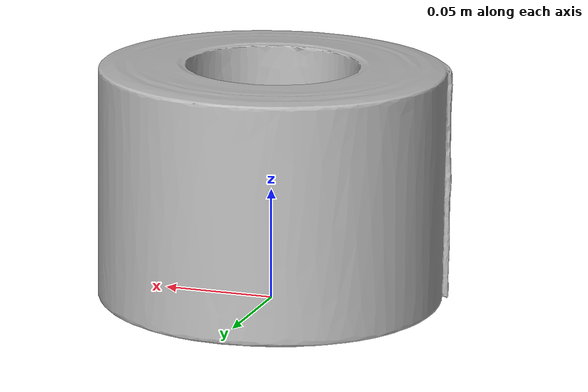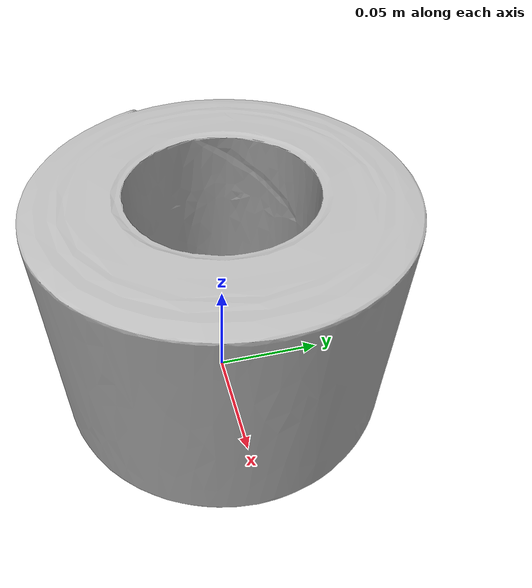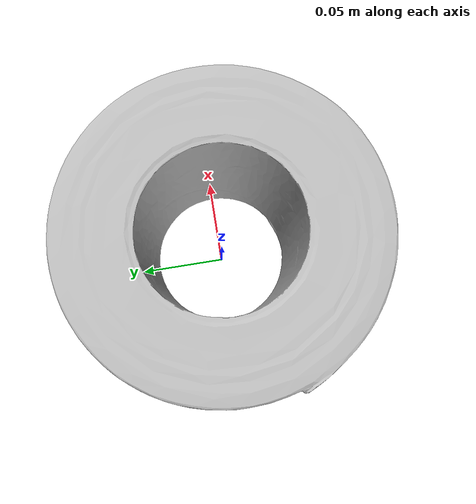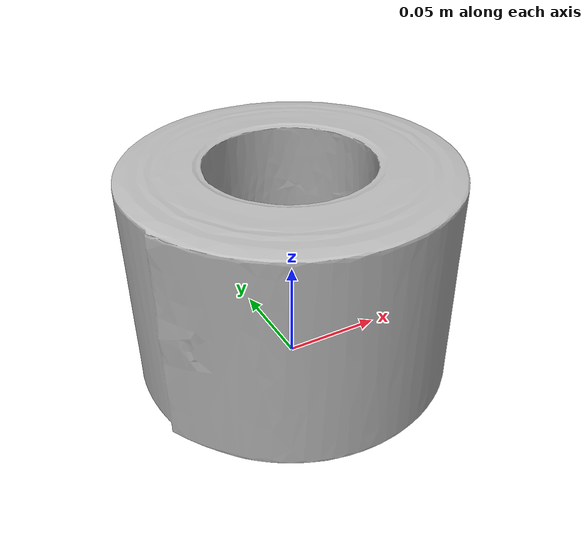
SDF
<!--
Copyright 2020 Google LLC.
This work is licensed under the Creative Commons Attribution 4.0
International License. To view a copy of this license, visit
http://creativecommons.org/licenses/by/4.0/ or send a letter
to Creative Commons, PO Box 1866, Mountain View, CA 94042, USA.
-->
<?xml version="1.0" ?>
<sdf version="1.6">
  <model name="Cole_Hardware_Antislip_Surfacing_Material_White">
    <link name="link_0">
      <visual name="visual">
        <geometry>
          <mesh>
            <uri>meshes/model.obj</uri>
          </mesh>
        </geometry>
      </visual>
      <collision name="collision_0">
        <geometry>
          <mesh>
            <uri>meshes/model.obj</uri>
          </mesh>
        </geometry>
      </collision>
    </link>
  </model>
</sdf>
